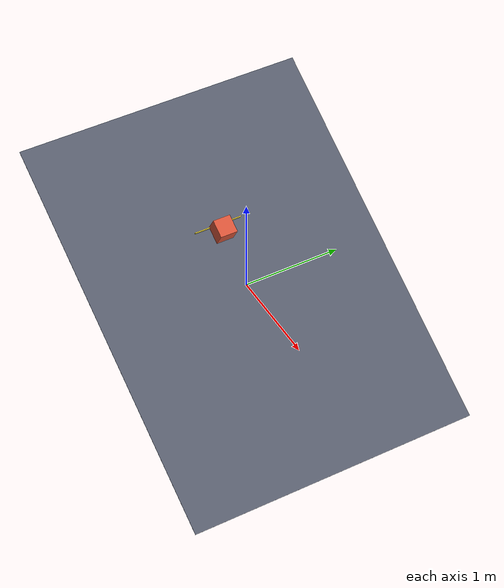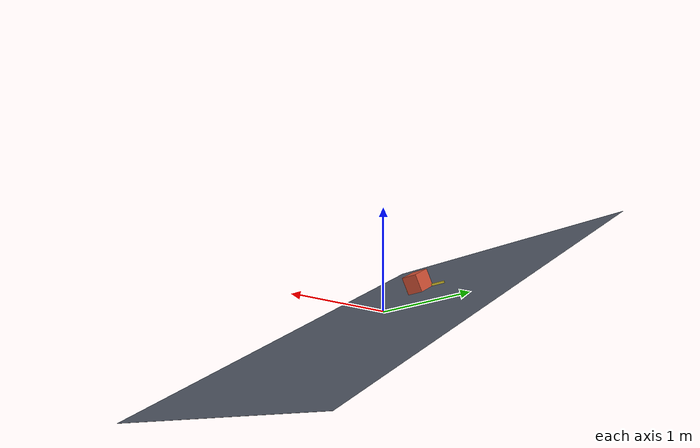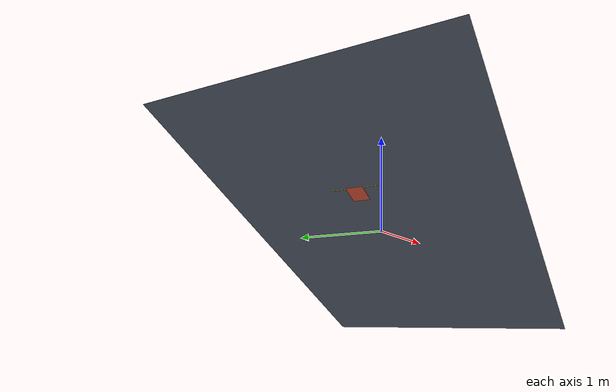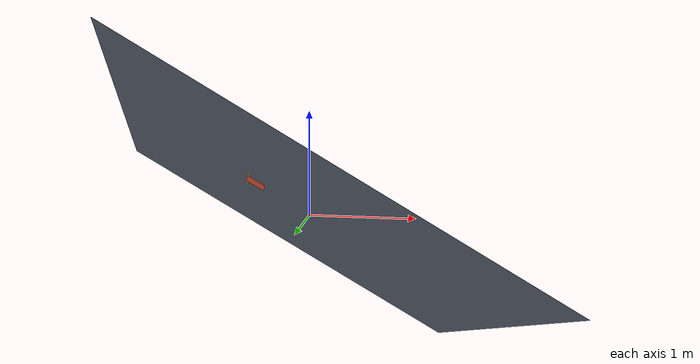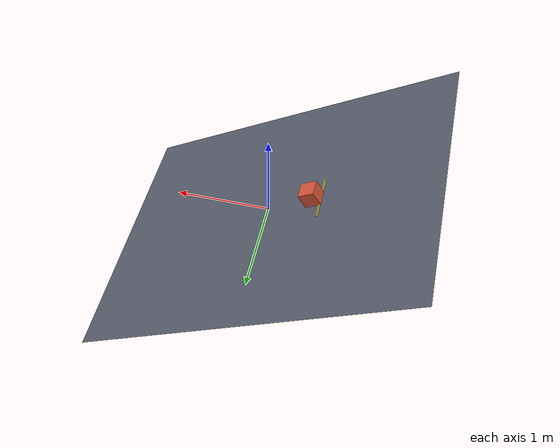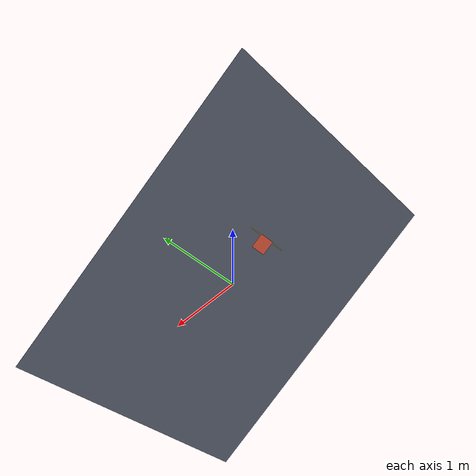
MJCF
<mujoco model="stiction_ramp">
  <option timestep="0.002" cone="elliptic" impratio="0.2">
    <flag stiction="enable"/>
  </option>
  <statistic extent="0.6"/>
  <visual>
    <headlight diffuse="0.6 0.6 0.6"/>
    <global azimuth="120" elevation="-20"/>
  </visual>
  <asset>
    <texture name="grid" type="2d" builtin="checker" rgb1="0.26 0.28 0.33" rgb2="0.42 0.45 0.52"
             width="512" height="512"/>
    <material name="grid" texture="grid" texrepeat="80 60" reflectance="0.05"/>
  </asset>
  <worldbody>
    <light pos="0 -0.6 2" dir="0 0.3 -1"/>
    <geom name="ramp" type="plane" size="2 1.5 0.1" euler="0 30 0"
          friction="1 0.005 0.0001" material="grid"/>
    <!-- fixed yellow start-line on the ramp surface, at the block's uphill edge -->
    <geom name="startline" type="box" size="0.004 0.25 0.012" pos="-0.555 0 0.333" euler="0 30 0"
          rgba="0.95 0.85 0.2 1" contype="0" conaffinity="0"/>
    <body name="block" pos="-0.45 0 0.36" euler="0 30 0">
      <freejoint/>
      <geom type="box" size="0.09 0.09 0.09" mass="1" friction="1 0.005 0.0001" rgba="0.85 0.33 0.22 1"/>
    </body>
  </worldbody>
</mujoco>
